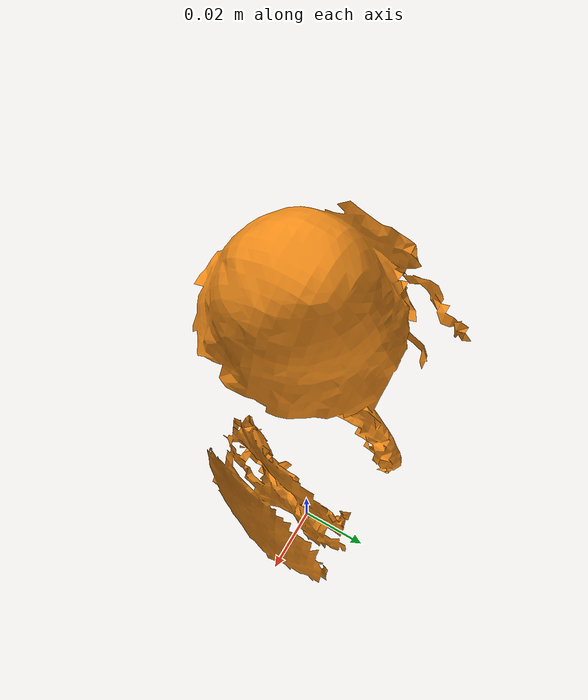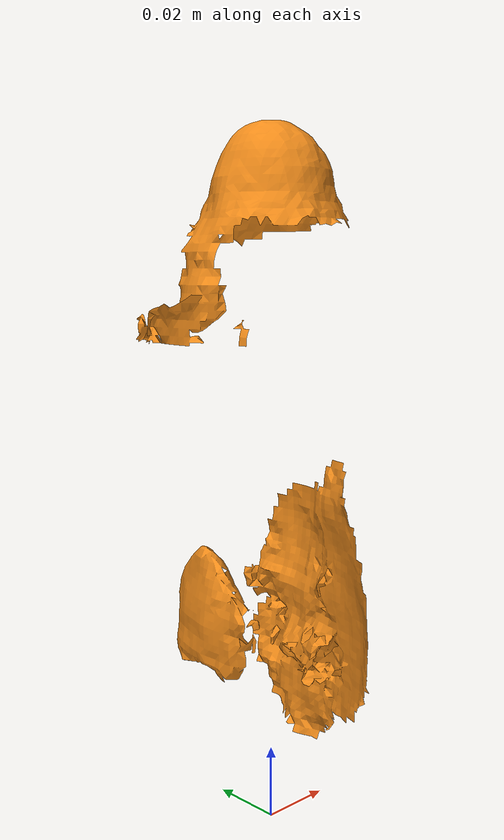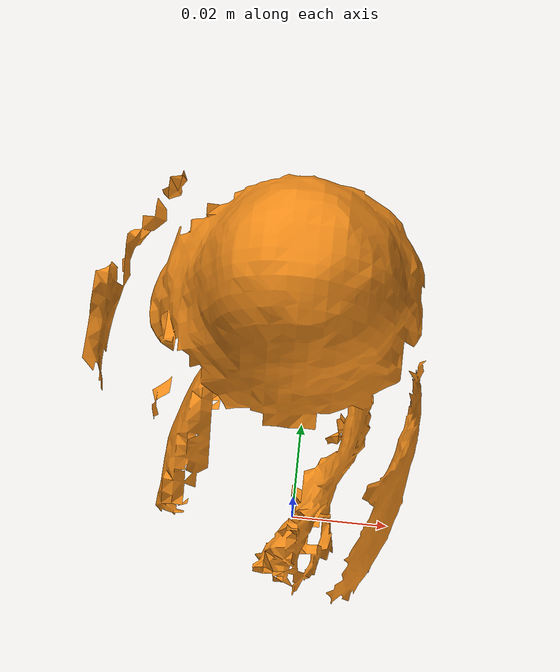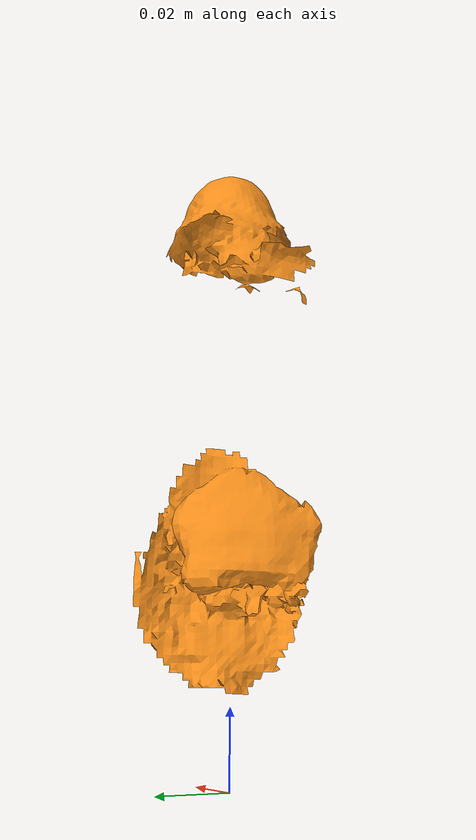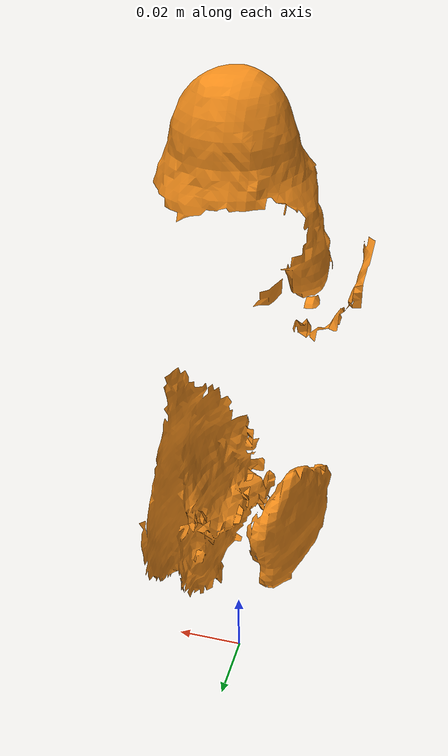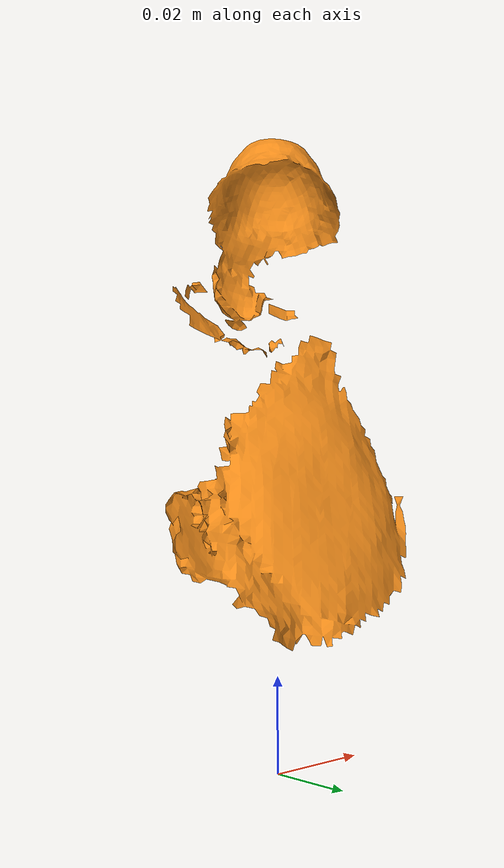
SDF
<?xml version='1.0'?>
<sdf version="1.4">
  <model name="palmolive_orange">
    <static>false</static>
    <link name="link">
      <inertial>
        <pose>-0.0026655546745232212 0.001095012992015946 0.10137799162106606 0.0684257988082603 -0.00515048073617621 -1.7559788019969884</pose>
        <mass>0.024892193488350714</mass>
        <inertia>
          <ixx>4.0843921191136916e-05</ixx>
          <ixy>3.929460109193021e-21</ixy>
          <ixz>7.168166000442524e-21</ixz>
          <iyy>4.009095654861304e-05</iyy>
          <iyz>-4.805059873216259e-22</iyz>
          <izz>7.291413516083792e-06</izz>
        </inertia>
      </inertial>
      <collision name="collision">
        <geometry>
          <mesh>
            <!-- Use a downsampled mesh for collisions -->
            <uri>model:///palmolive_orange/palmolive_orange_250_collision.obj</uri>
	        </mesh>
        </geometry>
        <surface>
      </surface>
      </collision>
      <visual name="visual">
        <geometry>
          <mesh>
            <uri>model:///palmolive_orange/optimized_tsdf_texture_mapped_mesh.obj</uri>
	        </mesh>
        </geometry>
        <material>
          <script>
            <uri>model:///palmolive_orange/palmolive_orange.material</uri>
            <name>palmolive_orange</name>
          </script>
        </material>
      </visual>
    </link>
  </model>
</sdf>
